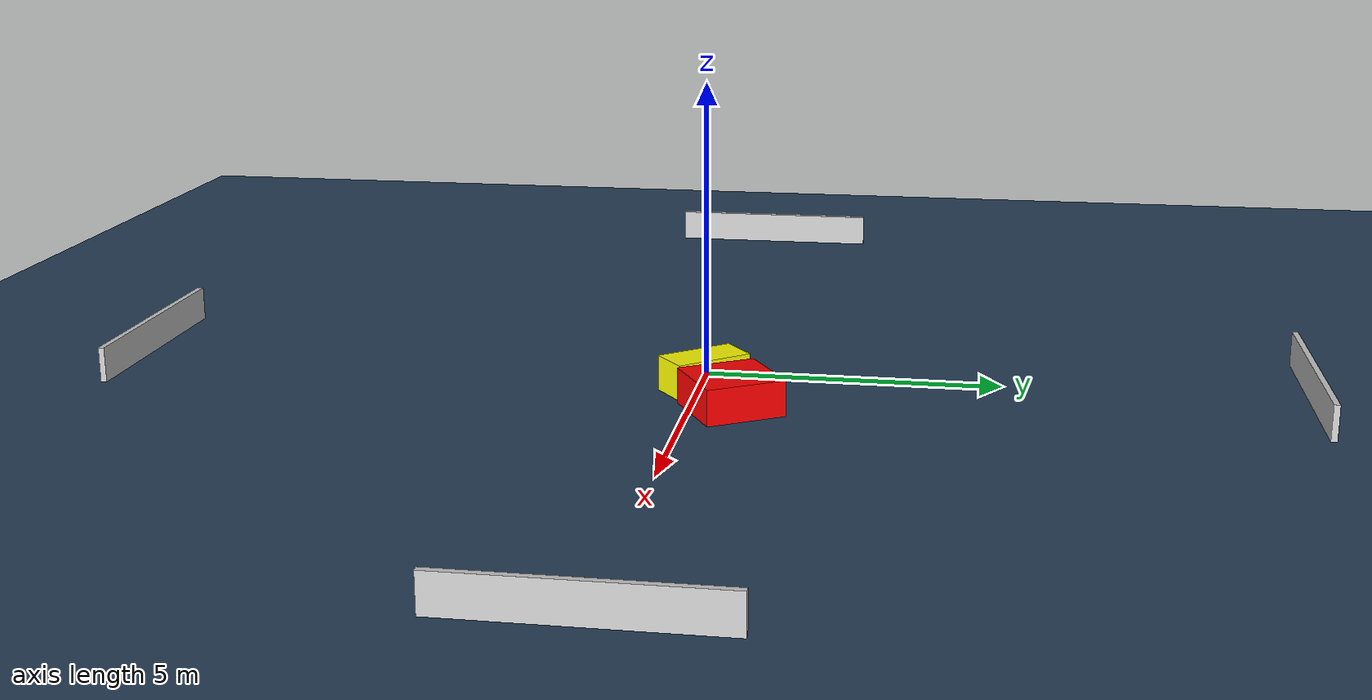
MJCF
<?xml version="1.0" ?>
<mujoco model="generated_environment">
  <option timestep="0.01" integrator="RK4" cone="elliptic"/>
  <default>
    <geom density="1"/>
  </default>
  <asset>
    <texture builtin="gradient" height="3072" name="skybox" rgb1="0.3 0.5 0.7" rgb2="0 0 0" type="skybox" width="512"/>
    <texture builtin="checker" height="300" name="groundplane" rgb1="0.2 0.3 0.4" rgb2="0.1 0.2 0.3" type="2d" width="300"/>
    <material name="groundplane" reflectance="0.2" texrepeat="5 5" texture="groundplane"/>
  </asset>
  <worldbody>
    <light dir="0 0 -1" directional="true" pos="0 0 1.5"/>
    <geom condim="3" friction="0.5 0.005 0.001" material="groundplane" name="floor" pos="0 0 0" size="0 0 0.05" type="plane"/>
    <body name="walls">
      <geom name="wall_1" condim="4" pos="-10.0 0.0 0.3" rgba="0.800000011920929 0.800000011920929 0.800000011920929 1.0" size="0.05 2.0 0.3" type="box"/>
      <geom name="wall_2" condim="4" pos="10.0 0.0 0.3" rgba="0.800000011920929 0.800000011920929 0.800000011920929 1.0" size="0.05 2.0 0.3" type="box"/>
      <geom name="wall_3" condim="4" pos="0.0 -10.0 0.3" rgba="0.800000011920929 0.800000011920929 0.800000011920929 1.0" size="2.0 0.05 0.3" type="box"/>
      <geom name="wall_4" condim="4" pos="0.0 10.0 0.3" rgba="0.800000011920929 0.800000011920929 0.800000011920929 1.0" size="2.0 0.05 0.3" type="box"/>
    </body>
    <body name="robot">
      <joint name="joint_x" type="slide" pos="0 0 0" axis="1 0 0"/>
      <joint name="joint_y" type="slide" pos="0 0 0" axis="0 1 0"/>
      <geom name="robot" type="cylinder" pos="0.0 0.0 0.2" size="0.2 0.2 0.0" mass="5.0" friction="1.0 0.005 0.0001" condim="4" rgba="1.0 1.0 0.0 1.0"/>
    </body>
    <body name="obstacle_1_movable">
      <geom name="obstacle_1_movable" condim="4" pos="0.8494971593239149 0.08576739962376746 0.3" euler="0 0 39.132666938388766" friction="0.0 0.005 0.001" rgba="1.0 1.0 0.0 1.0" size="0.3442676183259613 0.6791063659878614 0.3" type="box" mass="0.1"/>
      <joint type="free"/>
    </body>
    <body name="obstacle_2_static">
      <geom name="obstacle_2_static" condim="4" pos="1.8445152329610737 0.6713485524366605 0.3" euler="0 0 30.712278642095477" friction="0.0 0.005 0.001" rgba="1.0 0.0 0.0 1.0" size="0.6428557443255664 0.6763773790445241 0.3" type="box"/>
    </body>
  </worldbody>
  <actuator>
    <motor name="actuator_x" joint="joint_x" gear="1" ctrlrange="-1 1"/>
    <motor name="actuator_y" joint="joint_y" gear="1" ctrlrange="-1 1"/>
  </actuator>
</mujoco>
